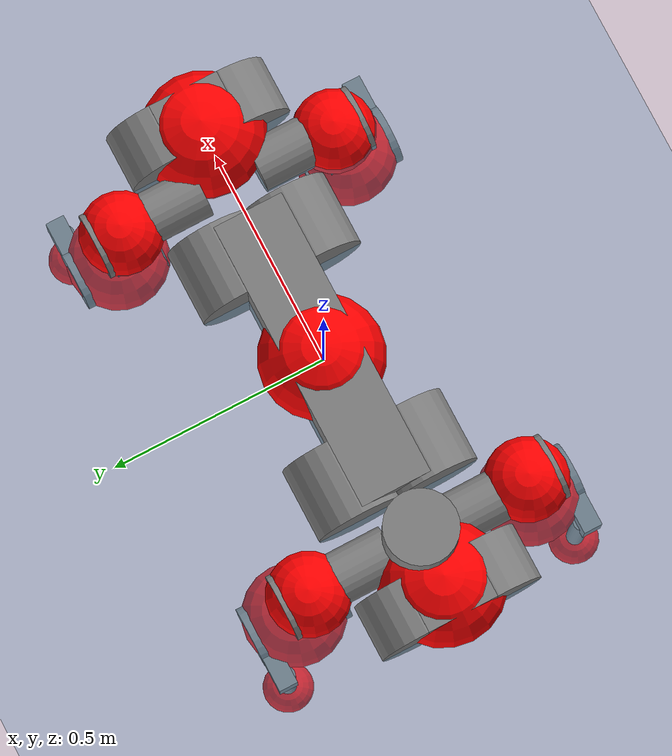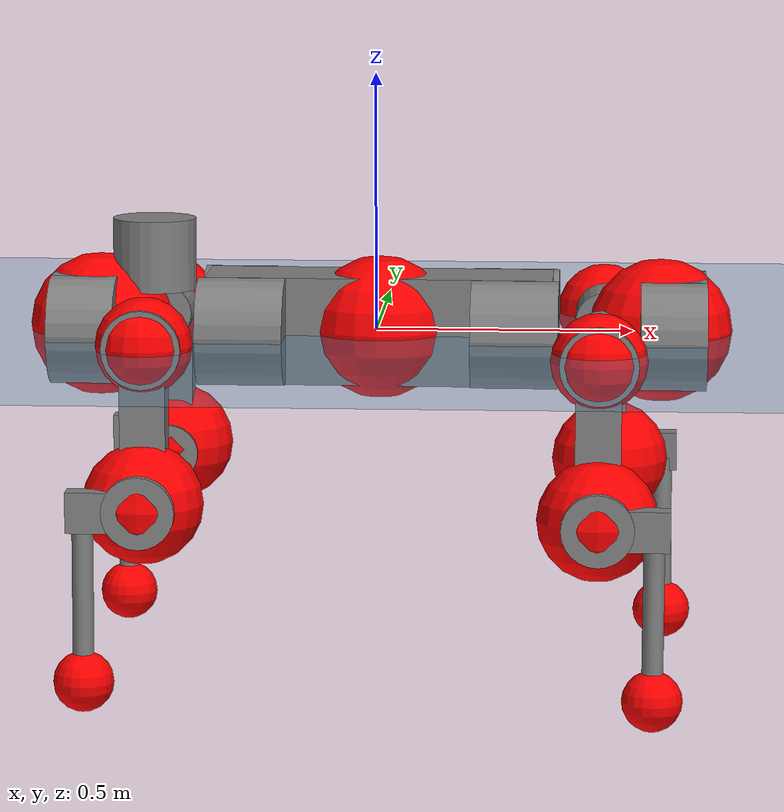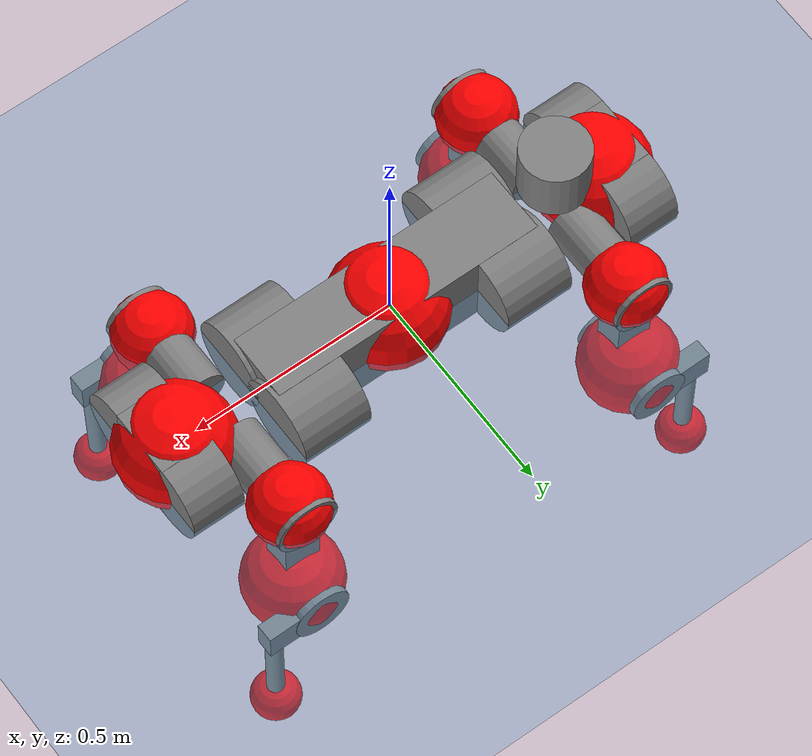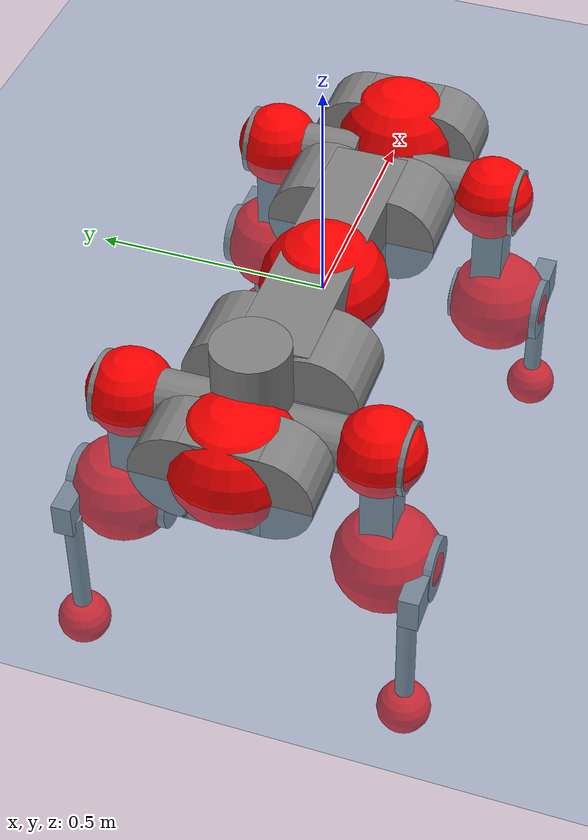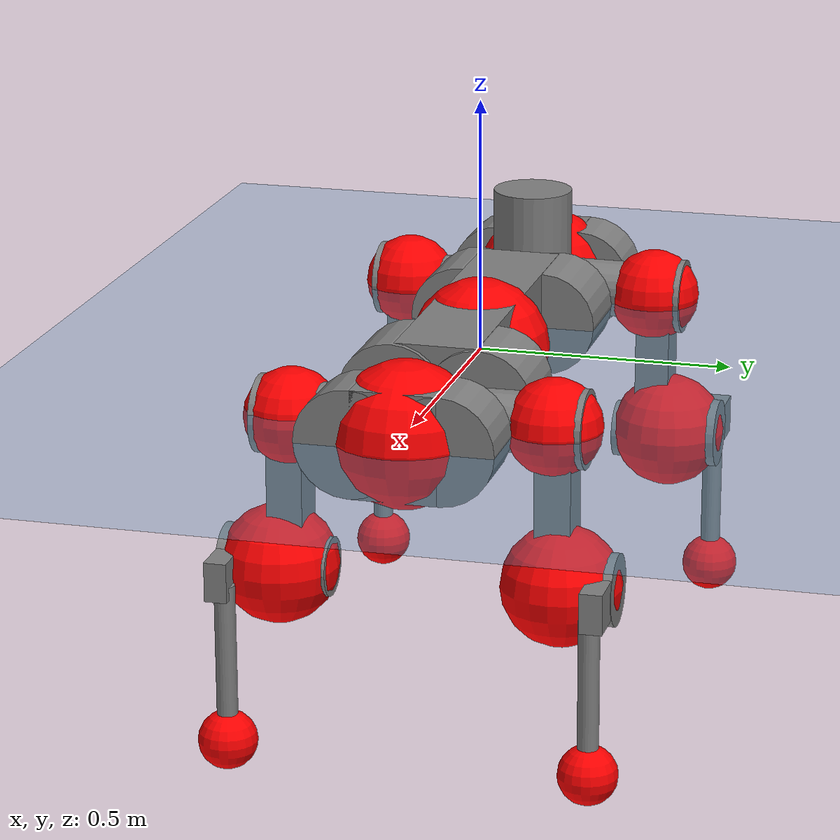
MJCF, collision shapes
<mujoco model="anymal_c">
  <compiler angle="radian" assetdir="assets" balanceinertia="true" inertiafromgeom="false"/>

  <option timestep="0.005" density="1.2" viscosity="2e-05"/>

  <size nkey="1"/>

  <visual>
    <quality shadowsize="8192"/>
    <map shadowclip="0.5"/>
  </visual>

  <default>
    <default class="/">
      <material specular="0" shininess="0.25"/>
      <geom contype="0" conaffinity="0" group="1" solref="-1000 -80"/>
      <site size="0.01 0.005 0.005" group="5"/>
      <general forcelimited="true" forcerange="-80 80" biastype="affine" gainprm="80" biasprm="0 -80 -2"/>
      <default class="anymal_c">
        <joint armature="0.01" damping="0.01" frictionloss="0.1"/>
        <default class="visual">
          <geom type="mesh" group="2"/>
          <default class="visual_zflip"/>
        </default>
        <default class="collision">
          <geom type="cylinder" group="3"/>
          <default class="foot">
            <geom size="0.03 0 0" type="sphere" condim="6" priority="1" friction="0.8 0.02 0.01" solimp="0.015 1 0.03"/>
          </default>
        </default>
      </default>
      <default class="reward_collision_sphere">
        <geom group="5" rgba="1 0 0 1"/>
      </default>
    </default>
  </default>

  <asset>
    <texture type="skybox" colorspace="auto" name="//unnamed_texture_0" builtin="gradient" rgb1="0.95 0.95 0.95" rgb2="0.95 0.95 0.95" width="100" height="600"/>
    <texture type="2d" colorspace="auto" name="texplane" builtin="checker" rgb1="0.345 0.575 0.748" rgb2="0.345 0.575 0.748" markrgb="1 1 1" width="512" height="512"/>
    <texture type="2d" colorspace="linear" name="base" file="base.png"/>
    <texture type="2d" colorspace="linear" name="top_shell" file="top_shell.png"/>
    <texture type="2d" colorspace="linear" name="bottom_shell" file="bottom_shell.png"/>
    <texture type="2d" colorspace="linear" name="remote" file="remote.png"/>
    <texture type="2d" colorspace="linear" name="hatch" file="hatch.png"/>
    <texture type="2d" colorspace="linear" name="handle" file="handle.png"/>
    <texture type="2d" colorspace="linear" name="face" file="face.png"/>
    <texture type="2d" colorspace="linear" name="battery" file="battery.png"/>
    <texture type="2d" colorspace="linear" name="lidar_cage" file="lidar_cage.png"/>
    <texture type="2d" colorspace="linear" name="depth_camera" file="depth_camera.png"/>
    <texture type="2d" colorspace="linear" name="wide_angle_camera" file="wide_angle_camera.png"/>
    <texture type="2d" colorspace="linear" name="lidar" file="lidar.png"/>
    <texture type="2d" colorspace="linear" name="drive" file="drive.png"/>
    <texture type="2d" colorspace="linear" name="hip_l" file="hip_l.png"/>
    <texture type="2d" colorspace="linear" name="shank_l" file="shank_l.png"/>
    <texture type="2d" colorspace="linear" name="foot" file="foot.png"/>
    <texture type="2d" colorspace="linear" name="thigh" file="thigh.png"/>
    <texture type="2d" colorspace="linear" name="shank_r" file="shank_r.png"/>
    <texture type="2d" colorspace="linear" name="hip_r" file="hip_r.png"/>
    <material name="MatPlane" class="/" texture="texplane" texuniform="true" texrepeat="2 2" specular="0.9" shininess="0.5"/>
    <material name="black_plastic" class="/" rgba="0.007 0.007 0.007 1"/>
    <material name="green" class="/" rgba="0.052 0.178 0.033 1"/>
    <material name="red" class="/" rgba="0.178 0.006 0.005 1"/>
    <material name="yellow" class="/" rgba="0.178 0.119 0.006 1"/>
    <material name="lwl" class="/" rgba="0.8 0.8 0.8 1"/>
    <material name="base" class="/" texture="base"/>
    <material name="top_shell" class="/" texture="top_shell"/>
    <material name="bottom_shell" class="/" texture="bottom_shell"/>
    <material name="hip_l" class="/" texture="hip_l"/>
    <material name="thigh" class="/" texture="thigh"/>
    <material name="shank_l" class="/" texture="shank_l"/>
    <material name="foot" class="/" texture="foot"/>
    <material name="hip_r" class="/" texture="hip_r"/>
    <material name="shank" class="/" texture="shank_r"/>
    <material name="hatch" class="/" texture="hatch"/>
    <material name="remote" class="/" texture="remote"/>
    <material name="handle" class="/" texture="handle"/>
    <material name="face" class="/" texture="face"/>
    <material name="depth_camera" class="/" texture="depth_camera"/>
    <material name="wide_angle_camera" class="/" texture="wide_angle_camera"/>
    <material name="battery" class="/" texture="battery"/>
    <material name="lidar_cage" class="/" texture="lidar_cage"/>
    <material name="lidar" class="/" texture="lidar"/>
    <material name="drive" class="/" texture="drive"/>
    <mesh name="base_0" class="/" file="base_0.obj"/>
    <mesh name="base_1" class="/" file="base_1.obj"/>
    <mesh name="base_2" class="/" file="base_2.obj"/>
    <mesh name="base_3" class="/" file="base_3.obj"/>
    <mesh name="base_4" class="/" file="base_4.obj"/>
    <mesh name="base_5" class="/" file="base_5.obj"/>
    <mesh name="top_shell" class="/" file="top_shell.obj"/>
    <mesh name="bottom_shell" class="/" file="bottom_shell.obj"/>
    <mesh name="remote" class="/" file="remote.obj"/>
    <mesh name="handle" class="/" file="handle.obj"/>
    <mesh name="face" class="/" file="face.obj"/>
    <mesh name="wide_angle_camera" class="/" file="wide_angle_camera.obj"/>
    <mesh name="depth_camera" class="/" file="depth_camera.obj"/>
    <mesh name="battery" class="/" file="battery.obj"/>
    <mesh name="lidar_cage" class="/" file="lidar_cage.obj"/>
    <mesh name="lidar" class="/" file="lidar.obj"/>
    <mesh name="drive" class="/" file="drive.obj"/>
    <mesh name="hip_l" class="/" file="hip_l.obj"/>
    <mesh name="thigh" class="/" file="thigh.obj"/>
    <mesh name="shank_l" class="/" file="shank_l.obj"/>
    <mesh name="foot" class="/" file="foot.obj"/>
    <mesh name="hip_r" class="/" file="hip_r.obj"/>
    <mesh name="hatch" class="/" file="hatch.obj"/>
    <mesh name="shank_r" class="/" file="shank_r.obj"/>
  </asset>

  <worldbody>
    <geom name="floor" class="/" size="100 100 0.125" type="plane" group="0" material="MatPlane"/>
    <light name="toplight_shadow" class="/" pos="0 0 5" dir="0.0990148 0.0990148 -0.990148" type="directional" ambient="0.04 0.04 0.04" diffuse="0.55 0.55 0.55" specular="0.12 0.12 0.12"/>
    <light name="toplight_fill" class="/" pos="0 0 5" dir="0.0990148 0.0990148 -0.990148" type="directional" castshadow="false" ambient="0.04 0.04 0.04" diffuse="0.3 0.3 0.3" specular="0.08 0.08 0.08"/>
    <body name="trunk" childclass="anymal_c" pos="0.00748177 -2.89764e-05 0.00492564" quat="0.999995 -0.00167118 0.00209883 0.00180998">
      <inertial pos="0.00813385 -0.00543584 0.0501083" quat="0.508174 0.47222 0.530883 0.486755" mass="27.1414" diaginertia="1.32196 1.5847 0.212621"/>
      <joint name="//unnamed_joint_0" type="free" armature="0" damping="0" frictionloss="0"/>
      <geom name="//unnamed_geom_1" class="visual" material="green" mesh="base_0"/>
      <geom name="//unnamed_geom_2" class="visual" material="yellow" mesh="base_1"/>
      <geom name="//unnamed_geom_3" class="visual" material="red" mesh="base_2"/>
      <geom name="//unnamed_geom_4" class="visual" material="black_plastic" mesh="base_3"/>
      <geom name="//unnamed_geom_5" class="visual" material="lwl" mesh="base_4"/>
      <geom name="//unnamed_geom_6" class="visual" material="base" mesh="base_5"/>
      <geom name="trunk_1" class="collision" size="0.336082 0.0811232 0.104301" type="box"/>
      <geom name="trunk_2" class="collision" size="0.104301 0.0840205" pos="0.263797 0.0852144 0" quat="0.707107 0 0.707107 0"/>
      <geom name="trunk_3" class="collision" size="0.104301 0.0840205" pos="-0.263797 0.0852144 0" quat="0.707107 0 0.707107 0"/>
      <geom name="trunk_4" class="collision" size="0.104301 0.0840205" pos="0.263797 -0.0852144 0" quat="0.707107 0 0.707107 0"/>
      <geom name="trunk_5" class="collision" size="0.104301 0.0840205" pos="-0.263797 -0.0852144 0" quat="0.707107 0 0.707107 0"/>
      <geom name="//unnamed_geom_12" class="visual" material="top_shell" mesh="top_shell"/>
      <geom name="//unnamed_geom_13" class="visual" material="bottom_shell" mesh="bottom_shell"/>
      <geom name="//unnamed_geom_14" class="visual" material="remote" mesh="remote"/>
      <geom name="//unnamed_geom_15" class="visual" material="handle" mesh="handle"/>
      <geom name="//unnamed_geom_16" class="visual" pos="0.502731 0 0" quat="1 0 0 0" material="face" mesh="face"/>
      <geom name="trunk_6" class="collision" size="0.0637397 0.0811232 0.104301" pos="0.569438 0 0" type="box"/>
      <geom name="//unnamed_geom_18" class="collision" size="0.104301 0.0637397" pos="0.569438 0.0852144 0" quat="0.707107 0 0.707107 0"/>
      <geom name="//unnamed_geom_19" class="collision" size="0.104301 0.0637397" pos="0.569438 -0.0852144 0" quat="0.707107 0 0.707107 0"/>
      <geom name="//unnamed_geom_20" class="visual" pos="0.55991 0 -0.0292935" quat="0.965926 0 0.258819 0" material="depth_camera" mesh="depth_camera"/>
      <geom name="//unnamed_geom_21" class="visual" pos="0.622198 0 0.0156661" material="wide_angle_camera" mesh="wide_angle_camera"/>
      <geom name="//unnamed_geom_22" class="visual_zflip" pos="-0.502731 0 0" quat="0 0 0 1" material="face" mesh="face"/>
      <geom name="trunk_7" class="collision" size="0.0637397 0.0811232 0.104301" pos="-0.569438 0 0" quat="0 0 0 1" type="box"/>
      <geom name="//unnamed_geom_24" class="collision" size="0.104301 0.0637397" pos="-0.569438 -0.0852144 0" quat="0 -0.707107 0 0.707107"/>
      <geom name="//unnamed_geom_25" class="collision" size="0.104301 0.0637397" pos="-0.569438 0.0852144 0" quat="0 -0.707107 0 0.707107"/>
      <geom name="//unnamed_geom_26" class="visual" pos="-0.55991 0 -0.0292935" quat="0 -0.258819 0 0.965926" material="depth_camera" mesh="depth_camera"/>
      <geom name="//unnamed_geom_27" class="visual_zflip" pos="-0.622198 0 0.0156661" quat="0 0 0 1" material="wide_angle_camera" mesh="wide_angle_camera"/>
      <geom name="//unnamed_geom_28" class="visual" material="battery" mesh="battery"/>
      <geom name="//unnamed_geom_29" class="visual" pos="0 0.0931305 0.0316652" quat="0.683013 -0.183013 0.183013 0.683013" material="depth_camera" mesh="depth_camera"/>
      <geom name="//unnamed_geom_30" class="visual" pos="0 -0.0931305 0.0316652" quat="0.683013 0.183013 0.183013 -0.683013" material="depth_camera" mesh="depth_camera"/>
      <geom name="//unnamed_geom_31" class="visual" pos="-0.441481 0 0.0769178" quat="1 0 0 0" material="lidar_cage" mesh="lidar_cage"/>
      <geom name="trunk_8" class="collision" size="0.0811232 0.0695342" pos="-0.441481 0 0.139708"/>
      <geom name="//unnamed_geom_33" class="visual" pos="-0.441481 1.76332e-06 0.148812" quat="0.707107 0 0 -0.707107" material="lidar" mesh="lidar"/>
      <geom name="//unnamed_geom_34" class="visual" pos="0.363737 0.126544 2.94717e-09" quat="0.258819 0.965926 0 0" material="drive" mesh="drive"/>
      <geom name="//unnamed_geom_35" class="visual" pos="0.363737 -0.126544 -2.94717e-09" quat="0.258819 -0.965926 0 0" material="drive" mesh="drive"/>
      <geom name="//unnamed_geom_36" class="visual" pos="-0.363737 0.126544 -2.94717e-09" quat="0 0 0.965926 -0.258819" material="drive" mesh="drive"/>
      <geom name="//unnamed_geom_37" class="visual" pos="-0.363737 -0.126544 2.94717e-09" quat="0 0 -0.965926 -0.258819" material="drive" mesh="drive"/>
      <geom name="//unnamed_geom_38" class="visual" pos="0.140692 0 0.0763945" quat="1 0 0 0" material="hatch" mesh="hatch"/>
      <geom name="//unnamed_geom_39" class="reward_collision_sphere" size="0.139068"/>
      <geom name="//unnamed_geom_40" class="reward_collision_sphere" size="0.139068" pos="0.545787 0 0"/>
      <geom name="//unnamed_geom_41" class="reward_collision_sphere" size="0.139068" pos="-0.545787 0 0"/>
      <site name="imu" pos="0.274154 0.0736595 0.0639242" size="0.011589"/>
      <camera name="track" pos="0 -2.4347 0" quat="0.707107 0.707107 0 0" mode="trackcom"/>
      <camera name="ego_camera" pos="0.545787 0 -0.04186" quat="-0.5 -0.5 0.5 0.5"/>
      <body name="LF_HIP" pos="0.365241 0.126299 0.00443286" quat="0.255547 0.966783 0.00116648 0.00500402">
        <inertial pos="0.0738224 -0.0172294 -0.00682969" quat="-0.134874 0.703534 -0.0996329 0.690596" mass="3.74426" diaginertia="0.0132479 0.011529 0.00334076"/>
        <joint name="LF_HAA" pos="0 0 0" axis="0.999629 0.0271287 0.00230118" range="-0.932014 0.457505" armature="0.00657386" damping="0.0189038" frictionloss="0.116826"/>
        <geom name="//unnamed_geom_42" class="visual" pos="0 0.000173369 -2.84756e-05" quat="0.258819 -0.965926 0 0" material="hip_l" mesh="hip_l"/>
        <geom name="//unnamed_geom_43" class="visual" pos="0.0726504 -0.0880298 -0.0495603" quat="0.183013 -0.683013 0.683013 0.183013" material="drive" mesh="drive"/>
        <geom name="//unnamed_geom_44" class="collision" size="0.0579452 0.0811232" pos="0.0726504 -0.0145593 -0.00722608" quat="-0.353553 -0.612372 0.612372 -0.353553"/>
        <body name="LF_THIGH" pos="0.0722118 -0.0870996 -0.0428642" quat="0.182147 -0.683027 0.683265 0.182884">
          <inertial pos="0.0362794 0.0107958 -0.24437" quat="0.994348 -0.00354409 -0.0727953 0.0772043" mass="4.88499" diaginertia="0.0801738 0.0866643 0.00528415"/>
          <joint name="LF_HFE" pos="0 0 0" axis="0.99999 0.00207451 0.00399574" range="-3.14196 2.89827" armature="0.0148593" damping="0.0679898" frictionloss="0.116531"/>
          <geom name="//unnamed_geom_45" class="visual" pos="-8.92991e-05 -1.40714e-07 0" quat="0.707107 0 0 -0.707107" material="thigh" mesh="thigh"/>
          <geom name="//unnamed_geom_46" class="collision" size="0.0753287 0.0463561" pos="0.0485144 0 0" quat="0.5 0.5 -0.5 -0.5"/>
          <geom name="//unnamed_geom_47" class="collision" size="0.0434589 0.0347671 0.163769" pos="0.0363858 0 -0.147885" quat="0.707107 0 0 -0.707107" type="box"/>
          <geom name="//unnamed_geom_48" class="visual" pos="0.12165 0 -0.298253" quat="1 0 0 0" material="drive" mesh="drive"/>
          <geom name="//unnamed_geom_49" class="collision" size="0.0579452 0.0811232" pos="0.0367497 0 -0.298253" quat="0.707107 0 0.707107 0"/>
          <geom name="//unnamed_geom_50" class="reward_collision_sphere" size="0.0927123" pos="0.0303215 0 0"/>
          <body name="LF_SHANK" pos="0.108814 -0.011509 -0.305365" quat="1 0.000144126 0.00017441 -9.02683e-05">
            <inertial pos="0.00887513 -0.0690425 -0.0914338" quat="0.992545 -0.119335 -0.00352781 -0.0245357" mass="0.809598" diaginertia="0.0247678 0.0255991 0.00144716"/>
            <joint name="LF_KFE" pos="0 0 0" axis="0.999936 0.0110605 -0.00227415" stiffness="0.0600066" range="-3.27807 3.33705" armature="0.011925" damping="0.0146055" frictionloss="0.114463"/>
            <geom name="//unnamed_geom_51" class="visual" pos="-2.91185e-05 -0.000155261 0" quat="0.707107 0 0 -0.707107" material="shank_l" mesh="shank_l"/>
            <geom name="LF_kfe_act" class="collision" size="0.0695342 0.0231781" pos="0.0242572 0 0" quat="0.5 0.5 -0.5 -0.5"/>
            <geom name="//unnamed_geom_53" class="collision" size="0.0666358 0.039113 0.0220192" pos="0.0242572 -0.0699964 0" quat="0.5 0.5 -0.5 -0.5" type="box"/>
            <geom name="//unnamed_geom_54" class="visual" pos="0.0158278 -0.107116 -0.353686" quat="0.382683 0 0 -0.92388" material="foot" mesh="foot"/>
            <geom name="LF_calf" class="collision" size="0.0202808 0.163697" pos="0.0158278 -0.107066 -0.176843" quat="0.707107 0 0 -0.707107"/>
            <geom name="LF_foot" class="foot" size="0.0493219" pos="0.0158278 -0.107066 -0.330139" quat="0.707107 0 0 -0.707107"/>
            <geom name="//unnamed_geom_57" class="reward_collision_sphere" size="0.11589" pos="-0.060643 0 0"/>
            <geom name="//unnamed_geom_58" class="reward_collision_sphere" size="0.0579452" pos="0.0158278 -0.107066 -0.330139"/>
            <site name="LF_foot" class="foot" pos="0.0158278 -0.107066 -0.330139" quat="0.707107 0 0 -0.707107" size="0.011589"/>
          </body>
        </body>
      </body>
      <body name="RF_HIP" pos="0.359125 -0.131607 -0.0111372" quat="0.258836 -0.965921 5.20016e-05 2.35639e-05">
        <inertial pos="0.0706867 0.0256731 -0.00731074" quat="0.108816 0.67048 0.0856469 0.728889" mass="3.67086" diaginertia="0.0140565 0.0107639 0.00351963"/>
        <joint name="RF_HAA" pos="0 0 0" axis="0.999999 0.000646274 0.00154807" stiffness="0.000785302" range="-0.645748 0.739956" armature="0.0113677" damping="0.0172925" frictionloss="0.0996687"/>
        <geom name="//unnamed_geom_59" class="visual" pos="0 -0.000173367 -2.84756e-05" quat="0.258819 0.965926 0 0" material="hip_r" mesh="hip_r"/>
        <geom name="//unnamed_geom_60" class="visual" pos="0.0726504 0.0880298 -0.0495603" quat="0.183013 0.683013 0.683013 -0.183013" material="drive" mesh="drive"/>
        <geom name="//unnamed_geom_61" class="collision" size="0.0579452 0.0811232" pos="0.0726504 0.0145593 -0.00722608" quat="-0.353553 0.612372 0.612372 0.353553"/>
        <body name="RF_THIGH" pos="0.0681644 0.0861277 -0.0352667" quat="0.183187 0.683567 0.682714 -0.181879">
          <inertial pos="0.0369427 -0.000447851 -0.245683" quat="0.989228 -0.0167669 -0.134666 0.0548865" mass="3.98979" diaginertia="0.0727511 0.0686417 0.00451041"/>
          <joint name="RF_HFE" pos="0 0 0" axis="0.999815 -0.0161132 0.01046" stiffness="0.0145445" range="-2.91759 2.96834" armature="0.0161707" damping="0.0101648" frictionloss="0.108885"/>
          <geom name="//unnamed_geom_62" class="visual" pos="-8.92991e-05 -1.40714e-07 0" quat="0.707107 0 0 -0.707107" material="thigh" mesh="thigh"/>
          <geom name="//unnamed_geom_63" class="collision" size="0.0753287 0.0463561" pos="0.0485144 0 0" quat="0.5 0.5 0.5 0.5"/>
          <geom name="//unnamed_geom_64" class="collision" size="0.0434589 0.0347671 0.163769" pos="0.0363858 0 -0.147885" quat="0.707107 0 0 0.707107" type="box"/>
          <geom name="//unnamed_geom_65" class="visual" pos="0.12165 0 -0.298253" quat="1 0 0 0" material="drive" mesh="drive"/>
          <geom name="//unnamed_geom_66" class="collision" size="0.0579452 0.0811232" pos="0.0367497 0 -0.298253" quat="0.707107 0 0.707107 0"/>
          <geom name="//unnamed_geom_67" class="reward_collision_sphere" size="0.0927123" pos="0.0303215 0 0"/>
          <body name="RF_SHANK" pos="0.120879 0.00100166 -0.298576" quat="1 1.71496e-05 -5.72165e-05 0.000162856">
            <inertial pos="0.00594126 0.0763227 -0.0974497" quat="0.995466 0.0898435 -0.00077743 0.0312103" mass="1.17587" diaginertia="0.0295657 0.0242372 0.00184702"/>
            <joint name="RF_KFE" pos="0 0 0" axis="0.999912 -0.00388168 -0.0126629" range="-3.09123 3.24433" armature="0.00700376" damping="0.0055958" frictionloss="0.117568"/>
            <geom name="//unnamed_geom_68" class="visual" pos="-2.91183e-05 0.000155261 0" quat="0.707107 0 0 0.707107" material="shank" mesh="shank_r"/>
            <geom name="RF_kfe_act" class="collision" size="0.0695342 0.0231781" pos="0.0242572 0 0" quat="0.5 0.5 0.5 0.5"/>
            <geom name="//unnamed_geom_70" class="collision" size="0.0666358 0.039113 0.0220192" pos="0.0242572 0.0699964 0" quat="0.5 0.5 0.5 0.5" type="box"/>
            <geom name="//unnamed_geom_71" class="visual" pos="0.0158278 0.107116 -0.353686" quat="0.382683 0 0 0.92388" material="foot" mesh="foot"/>
            <geom name="RF_calf" class="collision" size="0.0202808 0.163697" pos="0.0158278 0.107066 -0.176843" quat="0.707107 0 0 0.707107"/>
            <geom name="RF_foot" class="foot" size="0.0311737" pos="0.0158278 0.107066 -0.330139" quat="0.707107 0 0 0.707107"/>
            <geom name="//unnamed_geom_74" class="reward_collision_sphere" size="0.11589" pos="-0.060643 0 0"/>
            <geom name="//unnamed_geom_75" class="reward_collision_sphere" size="0.0579452" pos="0.0158278 0.107066 -0.330139"/>
            <site name="RF_foot" class="foot" pos="0.0158278 0.107066 -0.330139" quat="0.707107 0 0 0.707107" size="0.011589"/>
          </body>
        </body>
      </body>
      <body name="LH_HIP" pos="-0.362972 0.131198 0.0107254" quat="0.000500791 -0.00012877 0.965761 -0.259432">
        <inertial pos="0.0704735 0.0176023 0.00181074" quat="0.135342 0.679202 0.127431 0.71002" mass="3.74396" diaginertia="0.0134652 0.0142392 0.00416094"/>
        <joint name="LH_HAA" pos="0 0 0" axis="0.999998 -0.00145873 0.00113926" range="-0.736506 0.512351" armature="0.0114561" damping="0.0390049" frictionloss="0.0558378"/>
        <geom name="//unnamed_geom_76" class="visual" pos="0 -0.000173367 -2.84756e-05" quat="-0.258819 -0.965926 0 0" material="hip_r" mesh="hip_r"/>
        <geom name="//unnamed_geom_77" class="visual" pos="0.0726504 0.0880298 -0.0495603" quat="0.183013 0.683013 0.683013 -0.183013" material="drive" mesh="drive"/>
        <geom name="//unnamed_geom_78" class="collision" size="0.0579452 0.0811232" pos="0.0726504 0.0145593 -0.00722608" quat="-0.353553 0.612372 0.612372 0.353553"/>
        <body name="LH_THIGH" pos="0.0733175 0.0900326 -0.0435771" quat="0.182836 0.683165 0.683053 -0.182471">
          <inertial pos="0.0474257 -0.000360295 -0.244478" quat="0.990999 0.0456146 -0.0842777 0.0934723" mass="4.5846" diaginertia="0.0861133 0.077565 0.00566039"/>
          <joint name="LH_HFE" pos="0 0 0" axis="0.998745 -0.0460533 -0.0196667" stiffness="0.0126498" range="-2.93399 3.15535" armature="0.0097578" damping="0" frictionloss="0.106489"/>
          <geom name="//unnamed_geom_79" class="visual" pos="-8.92991e-05 -1.40714e-07 0" quat="0.707107 0 0 -0.707107" material="thigh" mesh="thigh"/>
          <geom name="//unnamed_geom_80" class="collision" size="0.0753287 0.0463561" pos="0.0485144 0 0" quat="0.5 0.5 -0.5 -0.5"/>
          <geom name="//unnamed_geom_81" class="collision" size="0.0434589 0.0347671 0.163769" pos="0.0363858 0 -0.147885" quat="0.707107 0 0 -0.707107" type="box"/>
          <geom name="//unnamed_geom_82" class="visual" pos="0.12165 0 -0.298253" quat="1 0 0 0" material="drive" mesh="drive"/>
          <geom name="//unnamed_geom_83" class="collision" size="0.0579452 0.0811232" pos="0.0367497 0 -0.298253" quat="0.707107 0 0.707107 0"/>
          <geom name="//unnamed_geom_84" class="reward_collision_sphere" size="0.0927123" pos="0.0303215 0 0"/>
          <body name="LH_SHANK" pos="0.127757 -0.00398195 -0.290324" quat="1 -0.000235476 0.000747313 0.000210729">
            <inertial pos="0.000972048 0.0806446 -0.0912656" quat="0.988842 0.143447 -0.0342156 0.0210481" mass="1.0221" diaginertia="0.0267339 0.0239452 0.00147825"/>
            <joint name="LH_KFE" pos="0 0 0" axis="0.99968 0.0150947 0.0203187" stiffness="0.0634999" range="-3.19655 3.13704" armature="0.0110991" damping="0.0109705" frictionloss="0.0819124"/>
            <geom name="//unnamed_geom_85" class="visual" pos="-2.91183e-05 0.000155261 0" quat="-0.707107 0 0 -0.707107" material="shank" mesh="shank_r"/>
            <geom name="LH_kfe_act" class="collision" size="0.0695342 0.0231781" pos="0.0242572 0 0" quat="0.5 0.5 -0.5 -0.5"/>
            <geom name="//unnamed_geom_87" class="collision" size="0.0666358 0.039113 0.0220192" pos="0.0242572 0.0699964 0" quat="0.5 0.5 -0.5 -0.5" type="box"/>
            <geom name="//unnamed_geom_88" class="visual" pos="0.0158278 0.107116 -0.353686" quat="-0.382683 0 0 -0.92388" material="foot" mesh="foot"/>
            <geom name="LH_calf" class="collision" size="0.0202808 0.163697" pos="0.0158278 0.107066 -0.176843" quat="0.707107 0 0 -0.707107"/>
            <geom name="LH_foot" class="foot" size="0.0304615" pos="0.0158278 0.107066 -0.330139" quat="0.707107 0 0 -0.707107"/>
            <geom name="//unnamed_geom_91" class="reward_collision_sphere" size="0.11589" pos="-0.060643 0 0"/>
            <geom name="//unnamed_geom_92" class="reward_collision_sphere" size="0.0579452" pos="0.0158278 0.107066 -0.330139"/>
            <site name="LH_foot" class="foot" pos="0.0158278 0.107066 -0.330139" quat="0.707107 0 0 -0.707107" size="0.011589"/>
          </body>
        </body>
      </body>
      <body name="RH_HIP" pos="-0.36361 -0.124421 -0.00405025" quat="-0.000670696 0.00150539 -0.965967 -0.258661">
        <inertial pos="0.0702545 -0.0287824 -0.00123947" quat="-0.128036 0.708608 -0.134021 0.680823" mass="4.72497" diaginertia="0.0177842 0.0152784 0.00475215"/>
        <joint name="RH_HAA" pos="0 0 0" axis="0.999914 -0.00869673 0.00980573" stiffness="0.00516044" range="-0.785901 0.666401" armature="0.0144634" damping="0.0544543" frictionloss="0.0980074"/>
        <geom name="//unnamed_geom_93" class="visual" pos="0 0.000173369 -2.84756e-05" quat="-0.258819 0.965926 0 0" material="hip_l" mesh="hip_l"/>
        <geom name="//unnamed_geom_94" class="visual" pos="0.0726504 -0.0880298 -0.0495603" quat="-0.183013 0.683013 -0.683013 -0.183013" material="drive" mesh="drive"/>
        <geom name="//unnamed_geom_95" class="collision" size="0.0579452 0.0811232" pos="0.0726504 -0.0145593 -0.00722608" quat="0.353553 0.612372 -0.612372 0.353553"/>
        <body name="RH_THIGH" pos="0.0719149 -0.0910928 -0.0549188" quat="-0.183169 0.683275 -0.682885 -0.182352">
          <inertial pos="0.0436865 -0.00748611 -0.256689" quat="0.993169 -0.0028905 -0.0809957 0.0839417" mass="5.91266" diaginertia="0.0835729 0.0882003 0.00519935"/>
          <joint name="RH_HFE" pos="0 0 0" axis="0.999878 0.0149599 0.00453512" range="-2.91827 2.93499" armature="0.0121024" damping="0.00360689" frictionloss="0.168676"/>
          <geom name="//unnamed_geom_96" class="visual" pos="-8.92991e-05 -1.40714e-07 0" quat="0.707107 0 0 -0.707107" material="thigh" mesh="thigh"/>
          <geom name="//unnamed_geom_97" class="collision" size="0.0753287 0.0463561" pos="0.0485144 0 0" quat="0.5 0.5 0.5 0.5"/>
          <geom name="//unnamed_geom_98" class="collision" size="0.0434589 0.0347671 0.163769" pos="0.0363858 0 -0.147885" quat="0.707107 0 0 0.707107" type="box"/>
          <geom name="//unnamed_geom_99" class="visual" pos="0.12165 0 -0.298253" quat="1 0 0 0" material="drive" mesh="drive"/>
          <geom name="//unnamed_geom_100" class="collision" size="0.0579452 0.0811232" pos="0.0367497 0 -0.298253" quat="0.707107 0 0.707107 0"/>
          <geom name="//unnamed_geom_101" class="reward_collision_sphere" size="0.0927123" pos="0.0303215 0 0"/>
          <body name="RH_SHANK" pos="0.110294 -0.00135334 -0.300097" quat="1 9.29693e-05 9.63515e-05 -8.29859e-05">
            <inertial pos="0.00371074 -0.0741484 -0.0856546" quat="0.992854 -0.11651 -0.00158018 -0.0257785" mass="1.09461" diaginertia="0.0293647 0.0265554 0.00154783"/>
            <joint name="RH_KFE" pos="0 0 0" axis="0.999633 -0.0259042 -0.00790855" stiffness="0.0269796" range="-3.10986 3.02401" armature="0.01394" damping="0.0627852" frictionloss="0.106395"/>
            <geom name="//unnamed_geom_102" class="visual" pos="-2.91185e-05 -0.000155261 0" quat="0.707107 0 0 -0.707107" material="shank_l" mesh="shank_l"/>
            <geom name="RH_kfe_act" class="collision" size="0.0695342 0.0231781" pos="0.0242572 0 0" quat="0.5 0.5 0.5 0.5"/>
            <geom name="//unnamed_geom_104" class="collision" size="0.0666358 0.039113 0.0220192" pos="0.0242572 -0.0699964 0" quat="0.5 0.5 0.5 0.5" type="box"/>
            <geom name="//unnamed_geom_105" class="visual" pos="0.0158278 -0.107116 -0.353686" quat="0.382683 0 0 -0.92388" material="foot" mesh="foot"/>
            <geom name="RH_calf" class="collision" size="0.0202808 0.163697" pos="0.0158278 -0.107066 -0.176843" quat="0.707107 0 0 0.707107"/>
            <geom name="RH_foot" class="foot" size="0.0354921" pos="0.0158278 -0.107066 -0.330139" quat="0.707107 0 0 0.707107"/>
            <geom name="//unnamed_geom_108" class="reward_collision_sphere" size="0.11589" pos="-0.060643 0 0"/>
            <geom name="//unnamed_geom_109" class="reward_collision_sphere" size="0.0579452" pos="0.0158278 -0.107066 -0.330139"/>
            <site name="RH_foot" class="foot" pos="0.0158278 -0.107066 -0.330139" quat="0.707107 0 0 0.707107" size="0.011589"/>
          </body>
        </body>
      </body>
    </body>
  </worldbody>

  <contact>
    <pair class="/" geom1="floor" geom2="LF_foot" name="//unnamed_contact_0"/>
    <pair class="/" geom1="floor" geom2="RF_foot" name="//unnamed_contact_1"/>
    <pair class="/" geom1="floor" geom2="LH_foot" name="//unnamed_contact_2"/>
    <pair class="/" geom1="floor" geom2="RH_foot" name="//unnamed_contact_3"/>
  </contact>

  <actuator>
    <general name="LF_HAA" class="/" joint="LF_HAA" forcerange="-91.4312 91.4312" gainprm="98.9881" biasprm="0 -98.9881 -1.74053"/>
    <general name="LF_HFE" class="/" joint="LF_HFE" forcerange="-60.0473 60.0473" gainprm="98.9881" biasprm="0 -98.9881 -1.74053"/>
    <general name="LF_KFE" class="/" joint="LF_KFE" forcerange="-129.21 129.21" gainprm="98.9881" biasprm="0 -98.9881 -1.74053"/>
    <general name="RF_HAA" class="/" joint="RF_HAA" forcerange="-96.3 96.3" gainprm="98.9881" biasprm="0 -98.9881 -1.74053"/>
    <general name="RF_HFE" class="/" joint="RF_HFE" forcerange="-71.5543 71.5543" gainprm="98.9881" biasprm="0 -98.9881 -1.74053"/>
    <general name="RF_KFE" class="/" joint="RF_KFE" forcerange="-47.2344 47.2344" gainprm="98.9881" biasprm="0 -98.9881 -1.74053"/>
    <general name="LH_HAA" class="/" joint="LH_HAA" forcerange="-55.5958 55.5958" gainprm="98.9881" biasprm="0 -98.9881 -1.74053"/>
    <general name="LH_HFE" class="/" joint="LH_HFE" forcerange="-76.7752 76.7752" gainprm="98.9881" biasprm="0 -98.9881 -1.74053"/>
    <general name="LH_KFE" class="/" joint="LH_KFE" forcerange="-102.886 102.886" gainprm="98.9881" biasprm="0 -98.9881 -1.74053"/>
    <general name="RH_HAA" class="/" joint="RH_HAA" forcerange="-92.5345 92.5345" gainprm="98.9881" biasprm="0 -98.9881 -1.74053"/>
    <general name="RH_HFE" class="/" joint="RH_HFE" forcerange="-135.606 135.606" gainprm="98.9881" biasprm="0 -98.9881 -1.74053"/>
    <general name="RH_KFE" class="/" joint="RH_KFE" forcerange="-123.107 123.107" gainprm="98.9881" biasprm="0 -98.9881 -1.74053"/>
  </actuator>

  <sensor>
    <gyro site="imu" name="imu_angular_velocity"/>
    <velocimeter site="imu" name="imu_linear_velocity"/>
    <framelinvel objtype="site" objname="LF_foot" name="LF_foot_global_linear_velocity"/>
    <framelinvel objtype="site" objname="RF_foot" name="RF_foot_global_linear_velocity"/>
    <framelinvel objtype="site" objname="LH_foot" name="LH_foot_global_linear_velocity"/>
    <framelinvel objtype="site" objname="RH_foot" name="RH_foot_global_linear_velocity"/>
  </sensor>

  <keyframe>
    <key name="home" qpos="0 0 0.55 1 0 0 0 0 0.4 -0.8 0 -0.4 0.8 0 -0.4 0.8 0 0.4 -0.8"/>
  </keyframe>
</mujoco>
